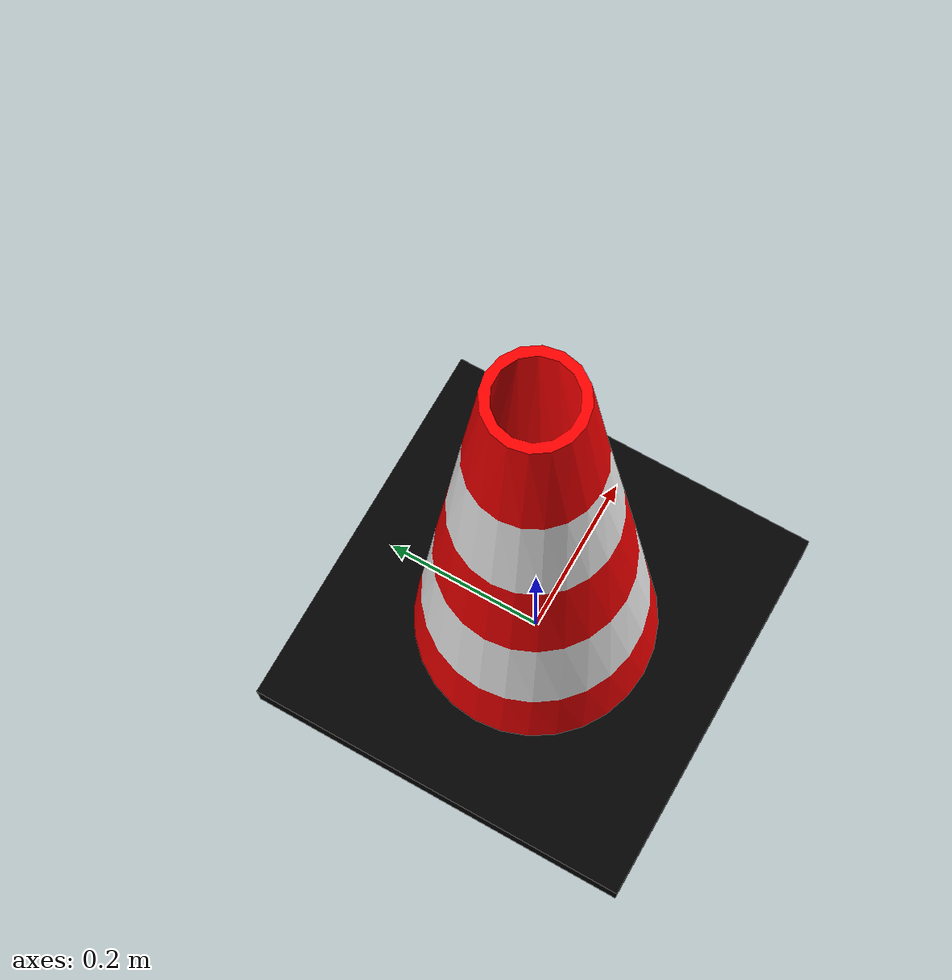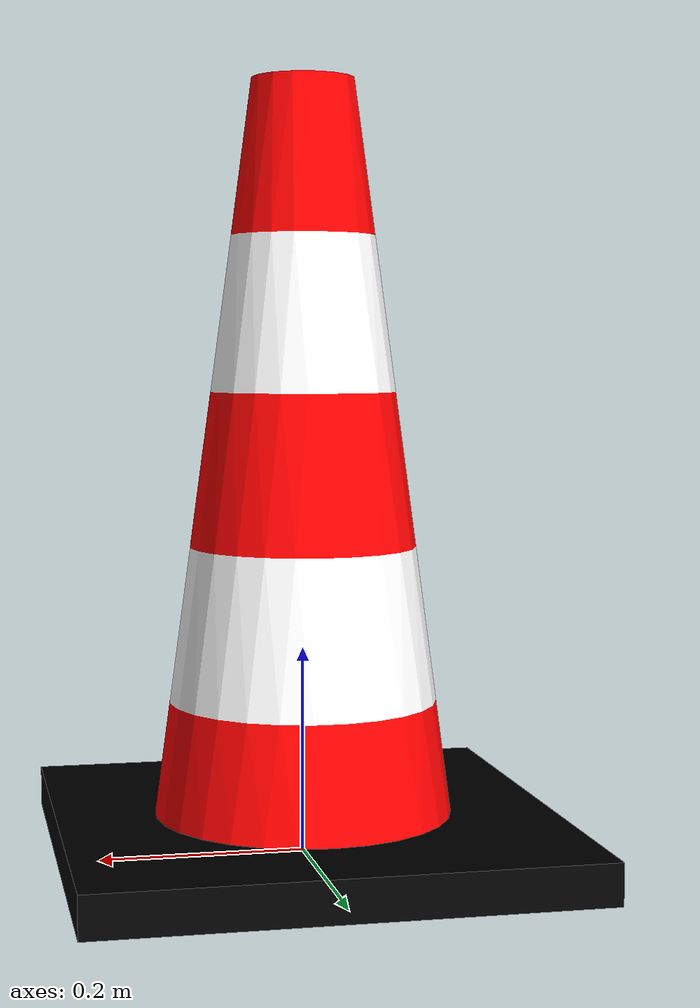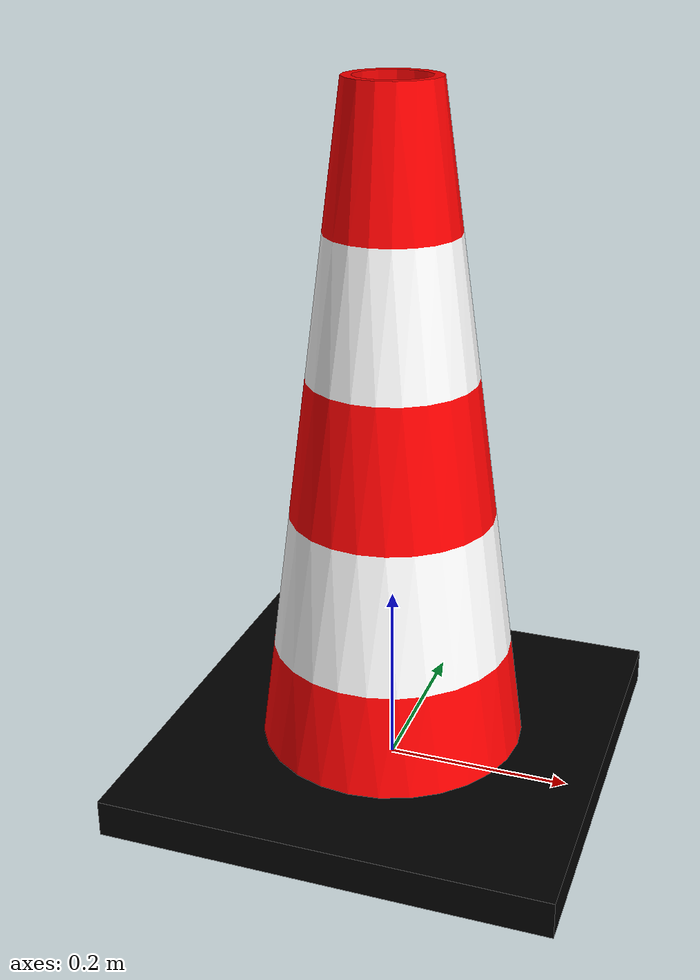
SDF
<?xml version="1.0" ?>
<sdf version="1.5">
	<model name="traffic_cone_75cm_001">
		<static>true</static>
		<link name="link">

		<collision name="collision">
			<pose>0 0 0.375 0 0 0</pose>
			<geometry>
				<cylinder>
					<radius>0.240</radius>
					<length>0.750</length>
				</cylinder>
			</geometry>
		</collision>

		<visual name="visual">
			<pose>0 0 0 1.5707 0 0</pose>
			<geometry>
				<mesh>
					<uri>model://traffic_cone_75cm_001/meshes/Traffic_Cone_75cm.dae</uri>
				</mesh>
			</geometry>
		</visual>

	</link>
	</model>
</sdf>
